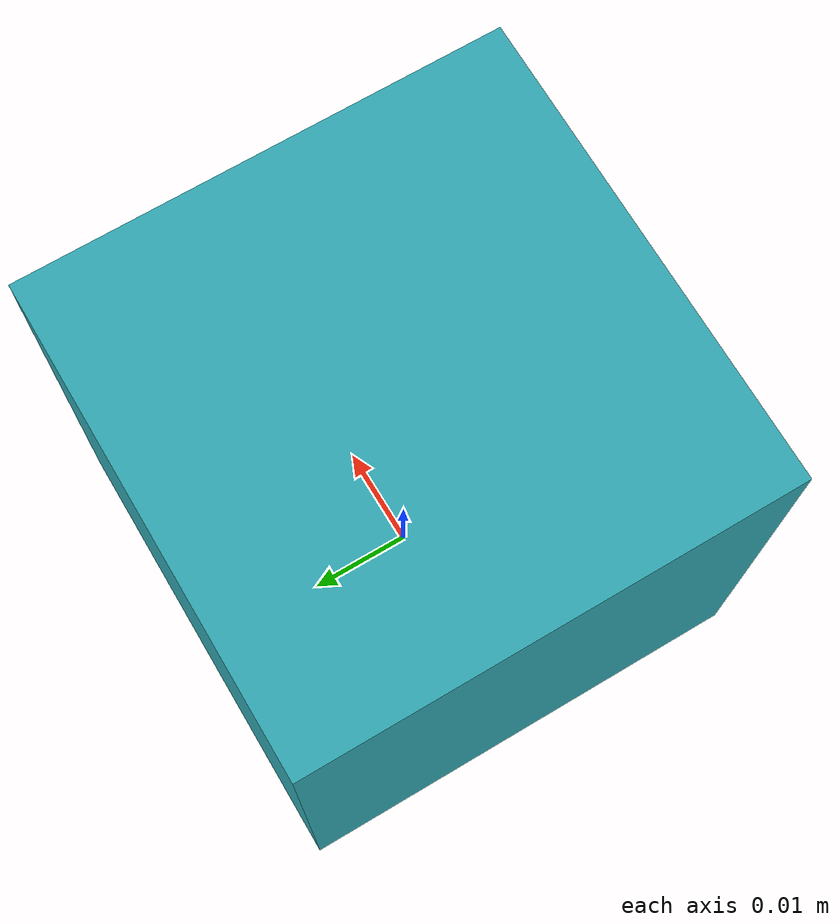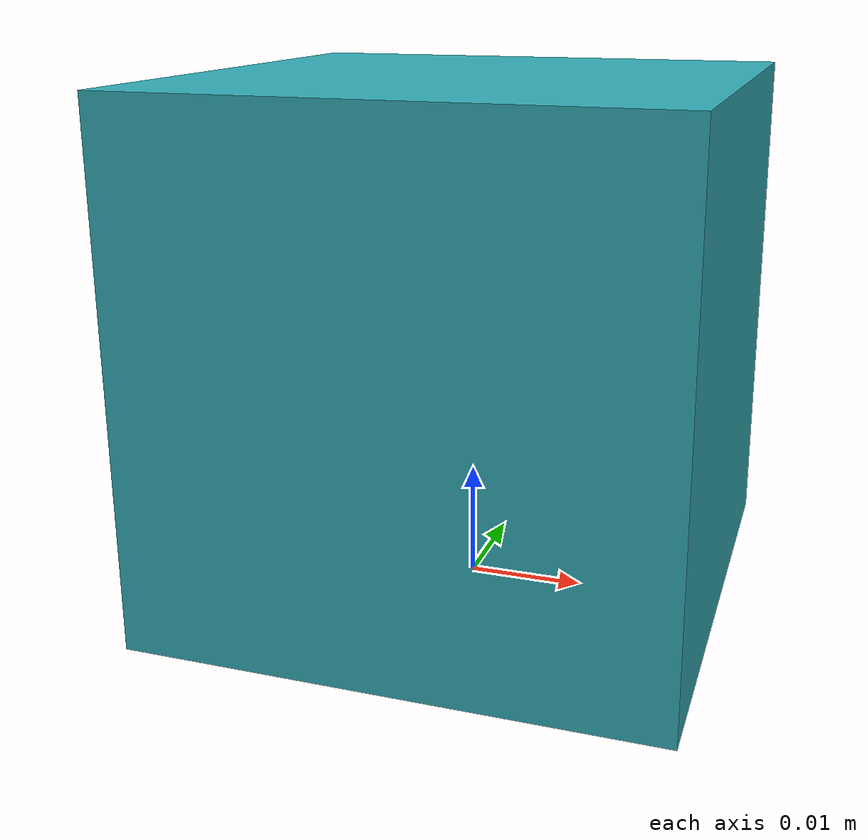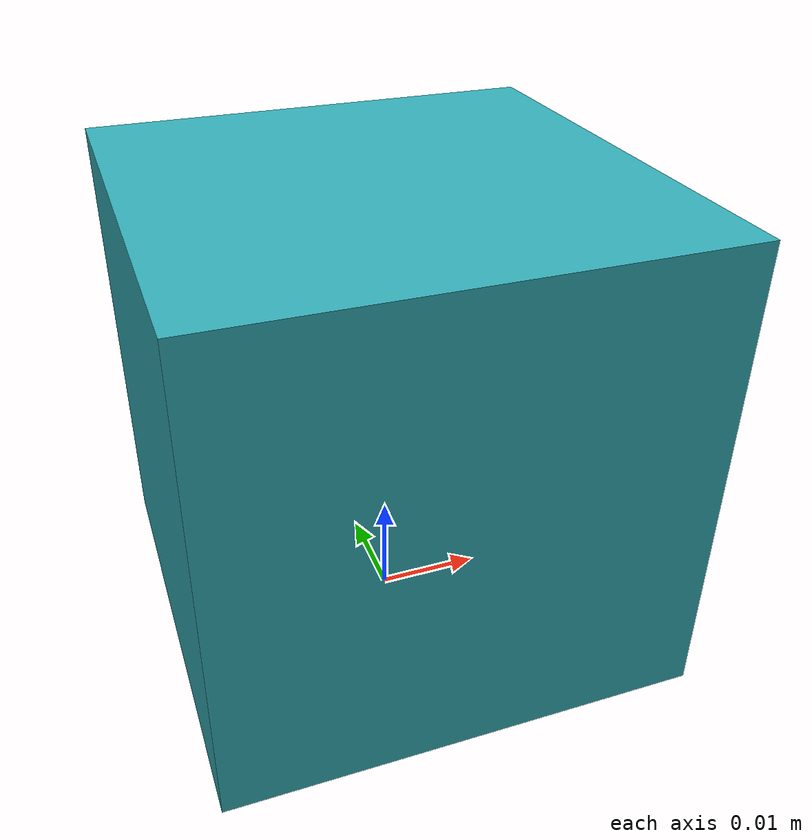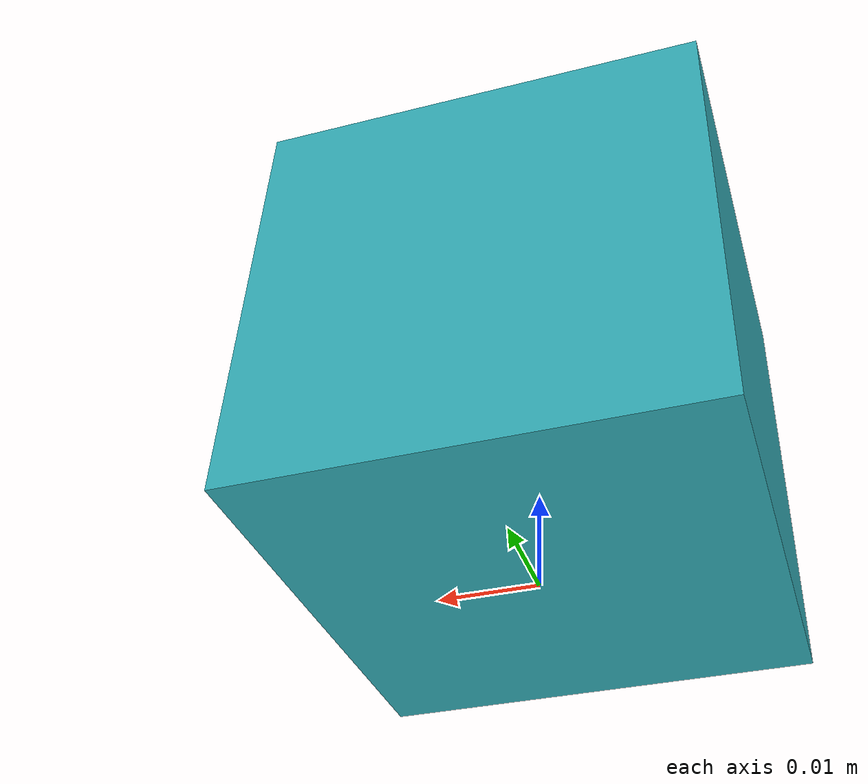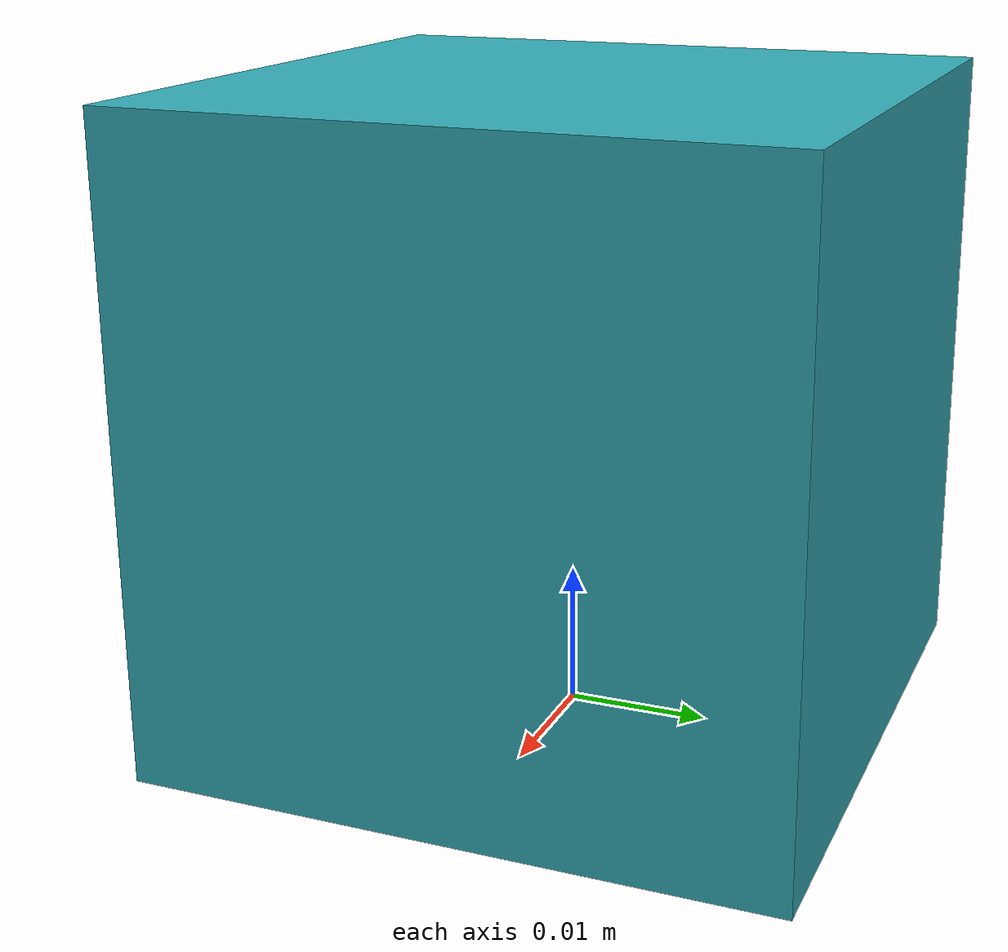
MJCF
<mujoco model="block_cyan_45">
  <compiler angle="radian"/>
  <asset>
  </asset>
  <worldbody>
    <body name="block_cyan_45">
      <freejoint/>
      <geom name="block_cyan_45_g0" type="box" size="0.0225 0.0225 0.0225" pos="0 0 0.0225" rgba="0.2 0.68 0.72 1" mass="0.05" friction="0.05 0.05 0.005" condim="4"/>
    </body>
  </worldbody>
</mujoco>
